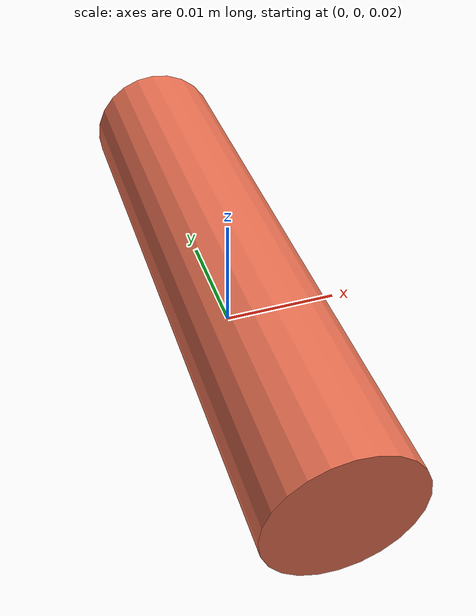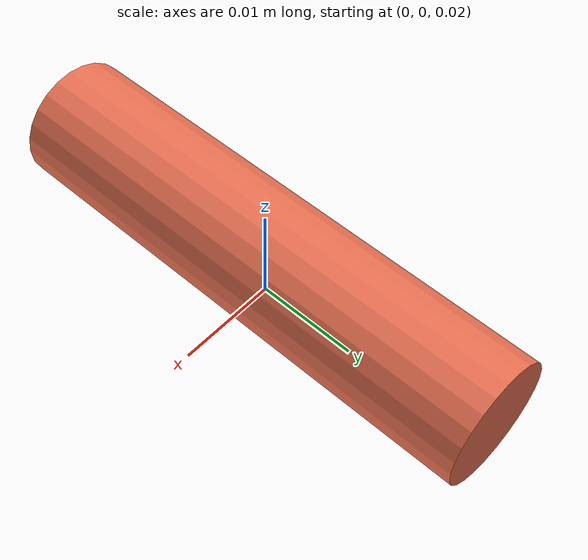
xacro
<?xml version="1.0"?>
<robot xmlns:xacro="http://www.ros.org/wiki/xacro" name="left_hand">
  <link name="left_base_link"/>
  <link name="left_palm_link">
    <visual>
      <geometry>
        <cylinder length="0.05" radius="0.006"/>
      </geometry>
      <origin xyz="0 0 0" rpy="1.57079632679 0 0"/>
      <material name="hand_color">
        <color rgba="0.9058823529 0.4352941176 0.3176470588 1"/>
      </material>
    </visual>
    <collision>
      <geometry>
        <cylinder length="0.05" radius="0.006"/>
      </geometry>
      <origin xyz="0 0 0" rpy="1.57079632679 0 0"/>
    </collision>
  </link>

  <joint name="left_mount" type="fixed">
    <parent link="left_base_link"/>
    <child link="left_palm_link"/>
    <origin xyz="0 0 0.025" rpy="0 0 0"/>
  </joint>
</robot>
